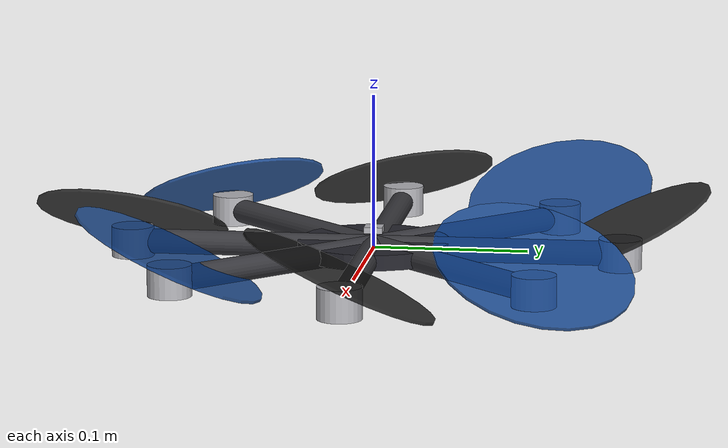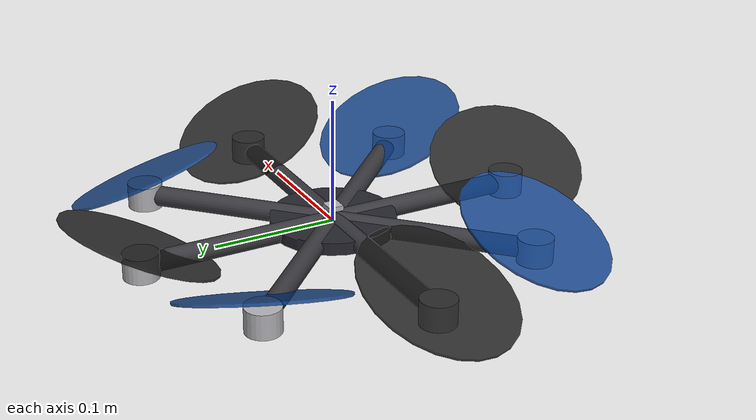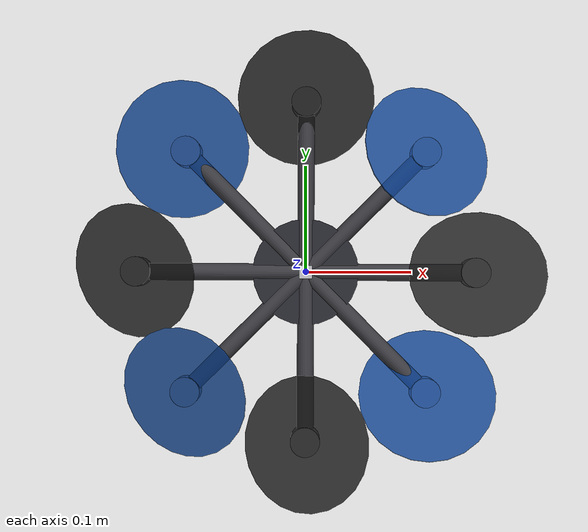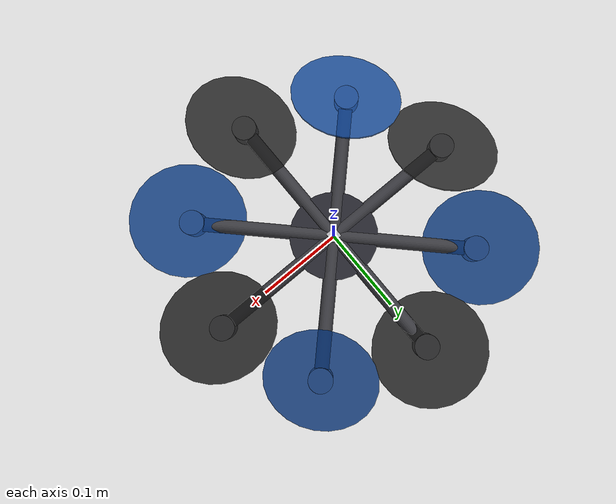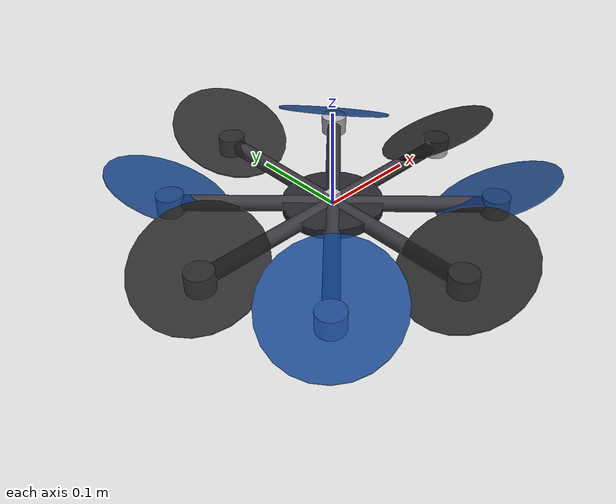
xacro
<?xml version="1.0"?>
<robot name="novel_random_tilt_octo" xmlns:xacro="http://www.ros.org/wiki/xacro">

  <material name="mat_core"><color rgba="0.15 0.15 0.18 1.0"/></material>
  <material name="mat_arm"><color rgba="0.22 0.22 0.24 1.0"/></material>
  <material name="mat_motor"><color rgba="0.70 0.70 0.72 1.0"/></material>
  <material name="mat_rotor_ccw"><color rgba="0.10 0.10 0.10 0.85"/></material>
  <material name="mat_rotor_cw"><color rgba="0.05 0.25 0.55 0.85"/></material>

  <xacro:macro name="inertial_box" params="mass x y z">
    <inertial><origin xyz="0 0 0" rpy="0 0 0"/><mass value="${mass}"/><inertia ixx="${mass*(y*y + z*z)/12.0}" ixy="0.0" ixz="0.0" iyy="${mass*(x*x + z*z)/12.0}" iyz="0.0" izz="${mass*(x*x + y*y)/12.0}"/></inertial>
  </xacro:macro>
  <xacro:macro name="inertial_cylinder_z" params="mass radius length">
    <inertial><origin xyz="0 0 0" rpy="0 0 0"/><mass value="${mass}"/><inertia ixx="${mass*(3*radius*radius + length*length)/12.0}" ixy="0.0" ixz="0.0" iyy="${mass*(3*radius*radius + length*length)/12.0}" iyz="0.0" izz="${0.5*mass*radius*radius}"/></inertial>
  </xacro:macro>

  <link name="base_link">
    <visual><geometry><cylinder radius="0.050000" length="0.010000"/></geometry><material name="mat_core"/></visual>
    <collision><geometry><cylinder radius="0.050000" length="0.010000"/></geometry></collision>
    <xacro:inertial_cylinder_z mass="0.400000" radius="0.050000" length="0.010000"/>
  </link>

  <link name="imu_link">
    <visual><origin xyz="0 0 0.012" rpy="0 0 0"/><geometry><box size="0.012 0.012 0.004"/></geometry><material name="mat_motor"/></visual>
    <collision><origin xyz="0 0 0.012" rpy="0 0 0"/><geometry><box size="0.012 0.012 0.004"/></geometry></collision>
    <xacro:inertial_box mass="0.005" x="0.012" y="0.012" z="0.004"/>
  </link>
  <joint name="imu_joint" type="fixed"><parent link="base_link"/><child link="imu_link"/><origin xyz="0 0 0" rpy="0 0 0"/></joint>

  <!-- arm_1: spin=ccw, propsize=2.0, pitch=0.045, blades=2, rotor_rpy=(-0.2880876948534879, -0.34569564659394203, -0.5699870937327997) -->
  <link name="arm_1_arm_link">
    <visual><origin xyz="0.080000 0 0" rpy="0 1.57079632679 0"/><geometry><cylinder radius="0.008000" length="0.160000"/></geometry><material name="mat_arm"/></visual>
    <collision><origin xyz="0.080000 0 0" rpy="0 1.57079632679 0"/><geometry><cylinder radius="0.008000" length="0.160000"/></geometry></collision>
    <xacro:inertial_cylinder_z mass="0.028800" radius="0.008000" length="0.160000"/>
  </link>
  <joint name="base_to_arm_1_arm_joint" type="fixed"><parent link="base_link"/><child link="arm_1_arm_link"/><origin xyz="0.000000 0.000000 0.000000" rpy="0.000000 0.000000 0.000000"/></joint>

  <link name="arm_1_motor_link">
    <visual><geometry><cylinder radius="0.014000" length="0.020000"/></geometry><material name="mat_motor"/></visual>
    <collision><geometry><cylinder radius="0.014000" length="0.020000"/></geometry></collision>
    <xacro:inertial_cylinder_z mass="0.060000" radius="0.014000" length="0.020000"/>
  </link>
  <joint name="arm_1_arm_to_motor_joint" type="fixed"><parent link="arm_1_arm_link"/><child link="arm_1_motor_link"/><origin xyz="0.160000 0.000000 0.000000" rpy="0.000000 0.000000 0.000000"/></joint>

  <link name="arm_1_rotor_link">
    <visual><origin xyz="0 0 0" rpy="0.000000 0.000000 0.000000"/><geometry><cylinder radius="0.063500" length="0.002000"/></geometry><material name="mat_rotor_ccw"/></visual>
    <collision><origin xyz="0 0 0" rpy="0.000000 0.000000 0.000000"/><geometry><cylinder radius="0.063500" length="0.002000"/></geometry></collision>
    <xacro:inertial_cylinder_z mass="0.010000" radius="0.010000" length="0.006000"/>
  </link>
  <joint name="arm_1_motor_to_rotor_joint" type="fixed"><parent link="arm_1_motor_link"/><child link="arm_1_rotor_link"/><origin xyz="0.000000 0.000000 0.016000" rpy="-0.288088 -0.345696 -0.569987"/></joint>

  <!-- arm_2: spin=cw, propsize=2.0, pitch=0.045, blades=2, rotor_rpy=(-0.07047738322490009, 0.4444467779765881, -0.3321471142214127) -->
  <link name="arm_2_arm_link">
    <visual><origin xyz="0.080000 0 0" rpy="0 1.57079632679 0"/><geometry><cylinder radius="0.008000" length="0.160000"/></geometry><material name="mat_arm"/></visual>
    <collision><origin xyz="0.080000 0 0" rpy="0 1.57079632679 0"/><geometry><cylinder radius="0.008000" length="0.160000"/></geometry></collision>
    <xacro:inertial_cylinder_z mass="0.028800" radius="0.008000" length="0.160000"/>
  </link>
  <joint name="base_to_arm_2_arm_joint" type="fixed"><parent link="base_link"/><child link="arm_2_arm_link"/><origin xyz="0.000000 0.000000 0.000000" rpy="0.000000 0.000000 0.785398"/></joint>

  <link name="arm_2_motor_link">
    <visual><geometry><cylinder radius="0.014000" length="0.020000"/></geometry><material name="mat_motor"/></visual>
    <collision><geometry><cylinder radius="0.014000" length="0.020000"/></geometry></collision>
    <xacro:inertial_cylinder_z mass="0.060000" radius="0.014000" length="0.020000"/>
  </link>
  <joint name="arm_2_arm_to_motor_joint" type="fixed"><parent link="arm_2_arm_link"/><child link="arm_2_motor_link"/><origin xyz="0.160000 0.000000 0.000000" rpy="0.000000 0.000000 0.000000"/></joint>

  <link name="arm_2_rotor_link">
    <visual><origin xyz="0 0 0" rpy="0.000000 0.000000 0.000000"/><geometry><cylinder radius="0.063500" length="0.002000"/></geometry><material name="mat_rotor_cw"/></visual>
    <collision><origin xyz="0 0 0" rpy="0.000000 0.000000 0.000000"/><geometry><cylinder radius="0.063500" length="0.002000"/></geometry></collision>
    <xacro:inertial_cylinder_z mass="0.010000" radius="0.010000" length="0.006000"/>
  </link>
  <joint name="arm_2_motor_to_rotor_joint" type="fixed"><parent link="arm_2_motor_link"/><child link="arm_2_rotor_link"/><origin xyz="0.000000 0.000000 0.016000" rpy="-0.070477 0.444447 -0.332147"/></joint>

  <!-- arm_3: spin=ccw, propsize=2.0, pitch=0.045, blades=2, rotor_rpy=(-0.038205691750932864, -0.44837520573492096, 0.21203938490749352) -->
  <link name="arm_3_arm_link">
    <visual><origin xyz="0.080000 0 0" rpy="0 1.57079632679 0"/><geometry><cylinder radius="0.008000" length="0.160000"/></geometry><material name="mat_arm"/></visual>
    <collision><origin xyz="0.080000 0 0" rpy="0 1.57079632679 0"/><geometry><cylinder radius="0.008000" length="0.160000"/></geometry></collision>
    <xacro:inertial_cylinder_z mass="0.028800" radius="0.008000" length="0.160000"/>
  </link>
  <joint name="base_to_arm_3_arm_joint" type="fixed"><parent link="base_link"/><child link="arm_3_arm_link"/><origin xyz="0.000000 0.000000 0.000000" rpy="0.000000 0.000000 1.570796"/></joint>

  <link name="arm_3_motor_link">
    <visual><geometry><cylinder radius="0.014000" length="0.020000"/></geometry><material name="mat_motor"/></visual>
    <collision><geometry><cylinder radius="0.014000" length="0.020000"/></geometry></collision>
    <xacro:inertial_cylinder_z mass="0.060000" radius="0.014000" length="0.020000"/>
  </link>
  <joint name="arm_3_arm_to_motor_joint" type="fixed"><parent link="arm_3_arm_link"/><child link="arm_3_motor_link"/><origin xyz="0.160000 0.000000 0.000000" rpy="0.000000 0.000000 0.000000"/></joint>

  <link name="arm_3_rotor_link">
    <visual><origin xyz="0 0 0" rpy="0.000000 0.000000 0.000000"/><geometry><cylinder radius="0.063500" length="0.002000"/></geometry><material name="mat_rotor_ccw"/></visual>
    <collision><origin xyz="0 0 0" rpy="0.000000 0.000000 0.000000"/><geometry><cylinder radius="0.063500" length="0.002000"/></geometry></collision>
    <xacro:inertial_cylinder_z mass="0.010000" radius="0.010000" length="0.006000"/>
  </link>
  <joint name="arm_3_motor_to_rotor_joint" type="fixed"><parent link="arm_3_motor_link"/><child link="arm_3_rotor_link"/><origin xyz="0.000000 0.000000 0.016000" rpy="-0.038206 -0.448375 0.212039"/></joint>

  <!-- arm_4: spin=cw, propsize=2.0, pitch=0.045, blades=2, rotor_rpy=(0.350626501446798, -0.2820656953320956, -0.4956734008447006) -->
  <link name="arm_4_arm_link">
    <visual><origin xyz="0.080000 0 0" rpy="0 1.57079632679 0"/><geometry><cylinder radius="0.008000" length="0.160000"/></geometry><material name="mat_arm"/></visual>
    <collision><origin xyz="0.080000 0 0" rpy="0 1.57079632679 0"/><geometry><cylinder radius="0.008000" length="0.160000"/></geometry></collision>
    <xacro:inertial_cylinder_z mass="0.028800" radius="0.008000" length="0.160000"/>
  </link>
  <joint name="base_to_arm_4_arm_joint" type="fixed"><parent link="base_link"/><child link="arm_4_arm_link"/><origin xyz="0.000000 0.000000 0.000000" rpy="0.000000 0.000000 2.356194"/></joint>

  <link name="arm_4_motor_link">
    <visual><geometry><cylinder radius="0.014000" length="0.020000"/></geometry><material name="mat_motor"/></visual>
    <collision><geometry><cylinder radius="0.014000" length="0.020000"/></geometry></collision>
    <xacro:inertial_cylinder_z mass="0.060000" radius="0.014000" length="0.020000"/>
  </link>
  <joint name="arm_4_arm_to_motor_joint" type="fixed"><parent link="arm_4_arm_link"/><child link="arm_4_motor_link"/><origin xyz="0.160000 0.000000 0.000000" rpy="0.000000 0.000000 0.000000"/></joint>

  <link name="arm_4_rotor_link">
    <visual><origin xyz="0 0 0" rpy="0.000000 0.000000 0.000000"/><geometry><cylinder radius="0.063500" length="0.002000"/></geometry><material name="mat_rotor_cw"/></visual>
    <collision><origin xyz="0 0 0" rpy="0.000000 0.000000 0.000000"/><geometry><cylinder radius="0.063500" length="0.002000"/></geometry></collision>
    <xacro:inertial_cylinder_z mass="0.010000" radius="0.010000" length="0.006000"/>
  </link>
  <joint name="arm_4_motor_to_rotor_joint" type="fixed"><parent link="arm_4_motor_link"/><child link="arm_4_rotor_link"/><origin xyz="0.000000 0.000000 0.016000" rpy="0.350627 -0.282066 -0.495673"/></joint>

  <!-- arm_5: spin=ccw, propsize=2.0, pitch=0.045, blades=2, rotor_rpy=(-0.3969269550673565, 0.21201177406209487, -0.5642433366743156) -->
  <link name="arm_5_arm_link">
    <visual><origin xyz="0.080000 0 0" rpy="0 1.57079632679 0"/><geometry><cylinder radius="0.008000" length="0.160000"/></geometry><material name="mat_arm"/></visual>
    <collision><origin xyz="0.080000 0 0" rpy="0 1.57079632679 0"/><geometry><cylinder radius="0.008000" length="0.160000"/></geometry></collision>
    <xacro:inertial_cylinder_z mass="0.028800" radius="0.008000" length="0.160000"/>
  </link>
  <joint name="base_to_arm_5_arm_joint" type="fixed"><parent link="base_link"/><child link="arm_5_arm_link"/><origin xyz="0.000000 0.000000 0.000000" rpy="0.000000 0.000000 3.141593"/></joint>

  <link name="arm_5_motor_link">
    <visual><geometry><cylinder radius="0.014000" length="0.020000"/></geometry><material name="mat_motor"/></visual>
    <collision><geometry><cylinder radius="0.014000" length="0.020000"/></geometry></collision>
    <xacro:inertial_cylinder_z mass="0.060000" radius="0.014000" length="0.020000"/>
  </link>
  <joint name="arm_5_arm_to_motor_joint" type="fixed"><parent link="arm_5_arm_link"/><child link="arm_5_motor_link"/><origin xyz="0.160000 0.000000 0.000000" rpy="0.000000 0.000000 0.000000"/></joint>

  <link name="arm_5_rotor_link">
    <visual><origin xyz="0 0 0" rpy="0.000000 0.000000 0.000000"/><geometry><cylinder radius="0.063500" length="0.002000"/></geometry><material name="mat_rotor_ccw"/></visual>
    <collision><origin xyz="0 0 0" rpy="0.000000 0.000000 0.000000"/><geometry><cylinder radius="0.063500" length="0.002000"/></geometry></collision>
    <xacro:inertial_cylinder_z mass="0.010000" radius="0.010000" length="0.006000"/>
  </link>
  <joint name="arm_5_motor_to_rotor_joint" type="fixed"><parent link="arm_5_motor_link"/><child link="arm_5_rotor_link"/><origin xyz="0.000000 0.000000 0.016000" rpy="-0.396927 0.212012 -0.564243"/></joint>

  <!-- arm_6: spin=cw, propsize=2.0, pitch=0.045, blades=2, rotor_rpy=(0.08810128077178958, 0.441291473208321, 0.006426345724034888) -->
  <link name="arm_6_arm_link">
    <visual><origin xyz="0.080000 0 0" rpy="0 1.57079632679 0"/><geometry><cylinder radius="0.008000" length="0.160000"/></geometry><material name="mat_arm"/></visual>
    <collision><origin xyz="0.080000 0 0" rpy="0 1.57079632679 0"/><geometry><cylinder radius="0.008000" length="0.160000"/></geometry></collision>
    <xacro:inertial_cylinder_z mass="0.028800" radius="0.008000" length="0.160000"/>
  </link>
  <joint name="base_to_arm_6_arm_joint" type="fixed"><parent link="base_link"/><child link="arm_6_arm_link"/><origin xyz="0.000000 0.000000 0.000000" rpy="0.000000 0.000000 3.926991"/></joint>

  <link name="arm_6_motor_link">
    <visual><geometry><cylinder radius="0.014000" length="0.020000"/></geometry><material name="mat_motor"/></visual>
    <collision><geometry><cylinder radius="0.014000" length="0.020000"/></geometry></collision>
    <xacro:inertial_cylinder_z mass="0.060000" radius="0.014000" length="0.020000"/>
  </link>
  <joint name="arm_6_arm_to_motor_joint" type="fixed"><parent link="arm_6_arm_link"/><child link="arm_6_motor_link"/><origin xyz="0.160000 0.000000 0.000000" rpy="0.000000 0.000000 0.000000"/></joint>

  <link name="arm_6_rotor_link">
    <visual><origin xyz="0 0 0" rpy="0.000000 0.000000 0.000000"/><geometry><cylinder radius="0.063500" length="0.002000"/></geometry><material name="mat_rotor_cw"/></visual>
    <collision><origin xyz="0 0 0" rpy="0.000000 0.000000 0.000000"/><geometry><cylinder radius="0.063500" length="0.002000"/></geometry></collision>
    <xacro:inertial_cylinder_z mass="0.010000" radius="0.010000" length="0.006000"/>
  </link>
  <joint name="arm_6_motor_to_rotor_joint" type="fixed"><parent link="arm_6_motor_link"/><child link="arm_6_rotor_link"/><origin xyz="0.000000 0.000000 0.016000" rpy="0.088101 0.441291 0.006426"/></joint>

  <!-- arm_7: spin=ccw, propsize=2.0, pitch=0.045, blades=2, rotor_rpy=(0.44375969429347845, 0.07468154872897702, -0.3613948191760218) -->
  <link name="arm_7_arm_link">
    <visual><origin xyz="0.080000 0 0" rpy="0 1.57079632679 0"/><geometry><cylinder radius="0.008000" length="0.160000"/></geometry><material name="mat_arm"/></visual>
    <collision><origin xyz="0.080000 0 0" rpy="0 1.57079632679 0"/><geometry><cylinder radius="0.008000" length="0.160000"/></geometry></collision>
    <xacro:inertial_cylinder_z mass="0.028800" radius="0.008000" length="0.160000"/>
  </link>
  <joint name="base_to_arm_7_arm_joint" type="fixed"><parent link="base_link"/><child link="arm_7_arm_link"/><origin xyz="0.000000 0.000000 0.000000" rpy="0.000000 0.000000 4.712389"/></joint>

  <link name="arm_7_motor_link">
    <visual><geometry><cylinder radius="0.014000" length="0.020000"/></geometry><material name="mat_motor"/></visual>
    <collision><geometry><cylinder radius="0.014000" length="0.020000"/></geometry></collision>
    <xacro:inertial_cylinder_z mass="0.060000" radius="0.014000" length="0.020000"/>
  </link>
  <joint name="arm_7_arm_to_motor_joint" type="fixed"><parent link="arm_7_arm_link"/><child link="arm_7_motor_link"/><origin xyz="0.160000 0.000000 0.000000" rpy="0.000000 0.000000 0.000000"/></joint>

  <link name="arm_7_rotor_link">
    <visual><origin xyz="0 0 0" rpy="0.000000 0.000000 0.000000"/><geometry><cylinder radius="0.063500" length="0.002000"/></geometry><material name="mat_rotor_ccw"/></visual>
    <collision><origin xyz="0 0 0" rpy="0.000000 0.000000 0.000000"/><geometry><cylinder radius="0.063500" length="0.002000"/></geometry></collision>
    <xacro:inertial_cylinder_z mass="0.010000" radius="0.010000" length="0.006000"/>
  </link>
  <joint name="arm_7_motor_to_rotor_joint" type="fixed"><parent link="arm_7_motor_link"/><child link="arm_7_rotor_link"/><origin xyz="0.000000 0.000000 0.016000" rpy="0.443760 0.074682 -0.361395"/></joint>

  <!-- arm_8: spin=cw, propsize=2.0, pitch=0.045, blades=2, rotor_rpy=(-0.2647676356203372, -0.36386549592949363, 0.05392977672386001) -->
  <link name="arm_8_arm_link">
    <visual><origin xyz="0.080000 0 0" rpy="0 1.57079632679 0"/><geometry><cylinder radius="0.008000" length="0.160000"/></geometry><material name="mat_arm"/></visual>
    <collision><origin xyz="0.080000 0 0" rpy="0 1.57079632679 0"/><geometry><cylinder radius="0.008000" length="0.160000"/></geometry></collision>
    <xacro:inertial_cylinder_z mass="0.028800" radius="0.008000" length="0.160000"/>
  </link>
  <joint name="base_to_arm_8_arm_joint" type="fixed"><parent link="base_link"/><child link="arm_8_arm_link"/><origin xyz="0.000000 0.000000 0.000000" rpy="0.000000 0.000000 5.497787"/></joint>

  <link name="arm_8_motor_link">
    <visual><geometry><cylinder radius="0.014000" length="0.020000"/></geometry><material name="mat_motor"/></visual>
    <collision><geometry><cylinder radius="0.014000" length="0.020000"/></geometry></collision>
    <xacro:inertial_cylinder_z mass="0.060000" radius="0.014000" length="0.020000"/>
  </link>
  <joint name="arm_8_arm_to_motor_joint" type="fixed"><parent link="arm_8_arm_link"/><child link="arm_8_motor_link"/><origin xyz="0.160000 0.000000 0.000000" rpy="0.000000 0.000000 0.000000"/></joint>

  <link name="arm_8_rotor_link">
    <visual><origin xyz="0 0 0" rpy="0.000000 0.000000 0.000000"/><geometry><cylinder radius="0.063500" length="0.002000"/></geometry><material name="mat_rotor_cw"/></visual>
    <collision><origin xyz="0 0 0" rpy="0.000000 0.000000 0.000000"/><geometry><cylinder radius="0.063500" length="0.002000"/></geometry></collision>
    <xacro:inertial_cylinder_z mass="0.010000" radius="0.010000" length="0.006000"/>
  </link>
  <joint name="arm_8_motor_to_rotor_joint" type="fixed"><parent link="arm_8_motor_link"/><child link="arm_8_rotor_link"/><origin xyz="0.000000 0.000000 0.016000" rpy="-0.264768 -0.363865 0.053930"/></joint>

</robot>
